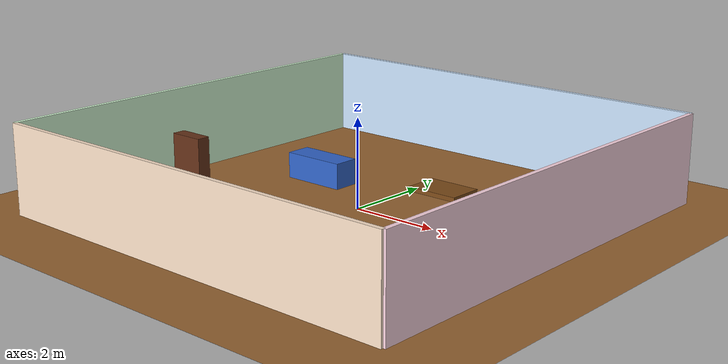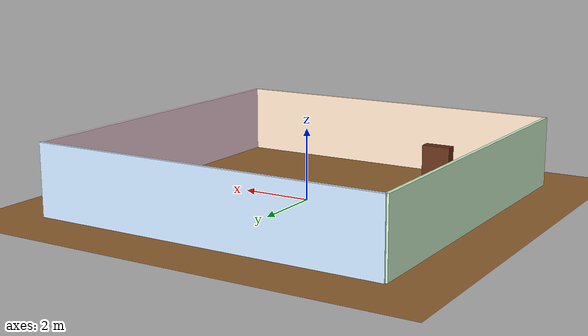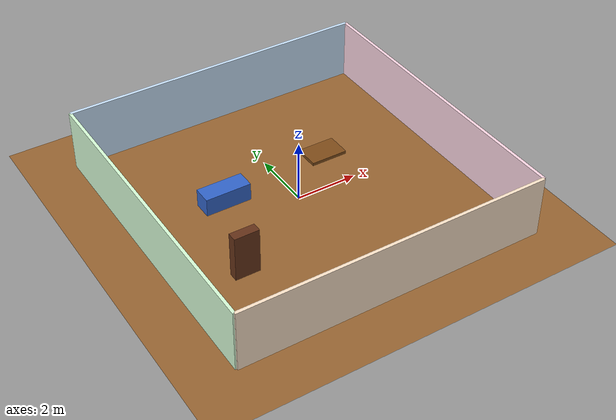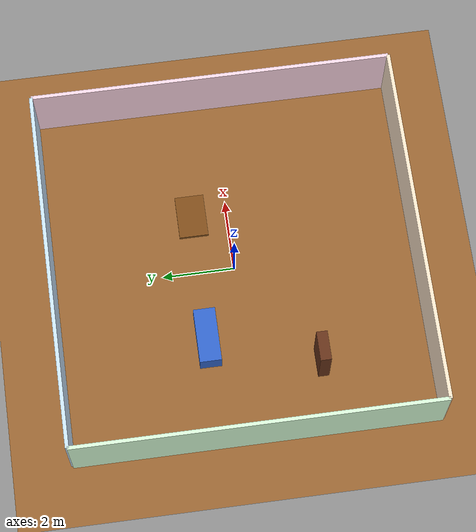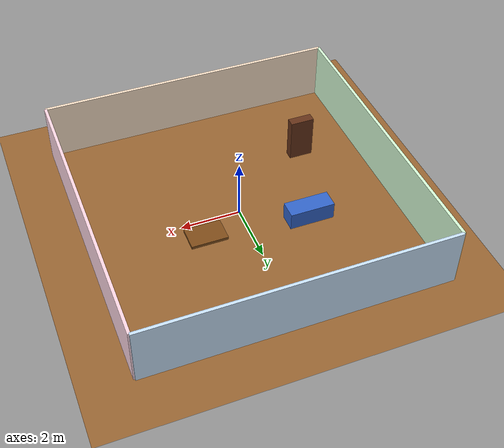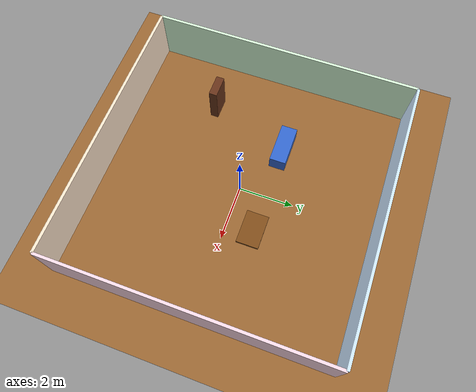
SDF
<?xml version="1.0" ?>
<sdf version="1.6">
  <world name="home">

    <!-- ✅ KEEP DEFAULT PHYSICS -->

    <model name="ground_custom">
  <static>true</static>
  <link name="link">
    <collision name="collision">
      <geometry>
        <plane>
          <normal>0 0 1</normal>
          <size>100 100</size>
        </plane>
      </geometry>

      <surface>
        <friction>
          <ode>
            <mu>1.5</mu>
            <mu2>1.5</mu2>
          </ode>
        </friction>
      </surface>
    </collision>

    <visual name="visual">
      <geometry>
        <plane>
          <normal>0 0 1</normal>
          <size>100 100</size>
        </plane>
      </geometry>
      <material>
        <ambient>0.6 0.4 0.2 1</ambient>
      </material>
    </visual>
  </link>
</model>

    <include>
      <uri>model://sun</uri>
    </include>

    <!-- 🌤 Lighting -->
    <scene>
      <ambient>0.6 0.6 0.6 1</ambient>
      <background>0.9 0.9 0.95 1</background>
    </scene>

    <!-- 🪵 Wooden Floor (VISUAL ONLY, NO COLLISION) -->
    <model name="wood_floor">
      <static>true</static>
      <link name="link">
        <visual name="visual">
          <geometry>
            <box>
              <size>10 10 0.01</size>
            </box>
          </geometry>
          <material>
            <ambient>0.6 0.4 0.2 1</ambient>
            <diffuse>0.6 0.4 0.2 1</diffuse>
          </material>
        </visual>
      </link>
    </model>

    <!-- 🧱 WALLS (COLORED) -->

    <!-- Back Wall -->
    <model name="wall_back">
      <static>true</static>
      <link name="link">
        <visual name="visual">
          <geometry>
            <box><size>10 0.1 2</size></box>
          </geometry>
          <material>
            <ambient>0.8 0.9 1.0 1</ambient> <!-- light blue -->
          </material>
        </visual>
      </link>
      <pose>0 5 1 0 0 0</pose>
    </model>

    <!-- Front Wall -->
    <model name="wall_front">
      <static>true</static>
      <link name="link">
        <visual name="visual">
          <geometry>
            <box><size>10 0.1 2</size></box>
          </geometry>
          <material>
            <ambient>1.0 0.9 0.8 1</ambient> <!-- warm cream -->
          </material>
        </visual>
      </link>
      <pose>0 -5 1 0 0 0</pose>
    </model>

    <!-- Left Wall -->
    <model name="wall_left">
      <static>true</static>
      <link name="link">
        <visual name="visual">
          <geometry>
            <box><size>0.1 10 2</size></box>
          </geometry>
          <material>
            <ambient>0.85 1.0 0.85 1</ambient> <!-- light green -->
          </material>
        </visual>
      </link>
      <pose>-5 0 1 0 0 0</pose>
    </model>

    <!-- Right Wall -->
    <model name="wall_right">
      <static>true</static>
      <link name="link">
        <visual name="visual">
          <geometry>
            <box><size>0.1 10 2</size></box>
          </geometry>
          <material>
            <ambient>1.0 0.85 0.9 1</ambient> <!-- light pink -->
          </material>
        </visual>
      </link>
      <pose>5 0 1 0 0 0</pose>
    </model>

    <!-- 🪑 TABLE -->
    <model name="table">
      <static>true</static>
      <link name="link">
        <visual name="visual">
          <geometry>
            <box><size>1.2 0.8 0.1</size></box>
          </geometry>
          <material>
            <ambient>0.5 0.3 0.1 1</ambient> <!-- wood -->
          </material>
        </visual>
      </link>
      <pose>1.5 1 0.5 0 0 0</pose>
    </model>

    <!-- 🛋 SOFA -->
    <model name="sofa">
      <static>true</static>
      <link name="link">
        <visual name="visual">
          <geometry>
            <box><size>1.5 0.6 0.6</size></box>
          </geometry>
          <material>
            <ambient>0.2 0.4 0.8 1</ambient> <!-- blue -->
          </material>
        </visual>
      </link>
      <pose>-2 1 0.3 0 0 0</pose>
    </model>

    <!-- 📚 SHELF -->
    <model name="shelf">
      <static>true</static>
      <link name="link">
        <visual name="visual">
          <geometry>
            <box><size>0.8 0.3 1.5</size></box>
          </geometry>
          <material>
            <ambient>0.4 0.2 0.1 1</ambient>
          </material>
        </visual>
      </link>
      <pose>-3 -2 0.75 0 0 0</pose>
    </model>

  </world>
</sdf>
